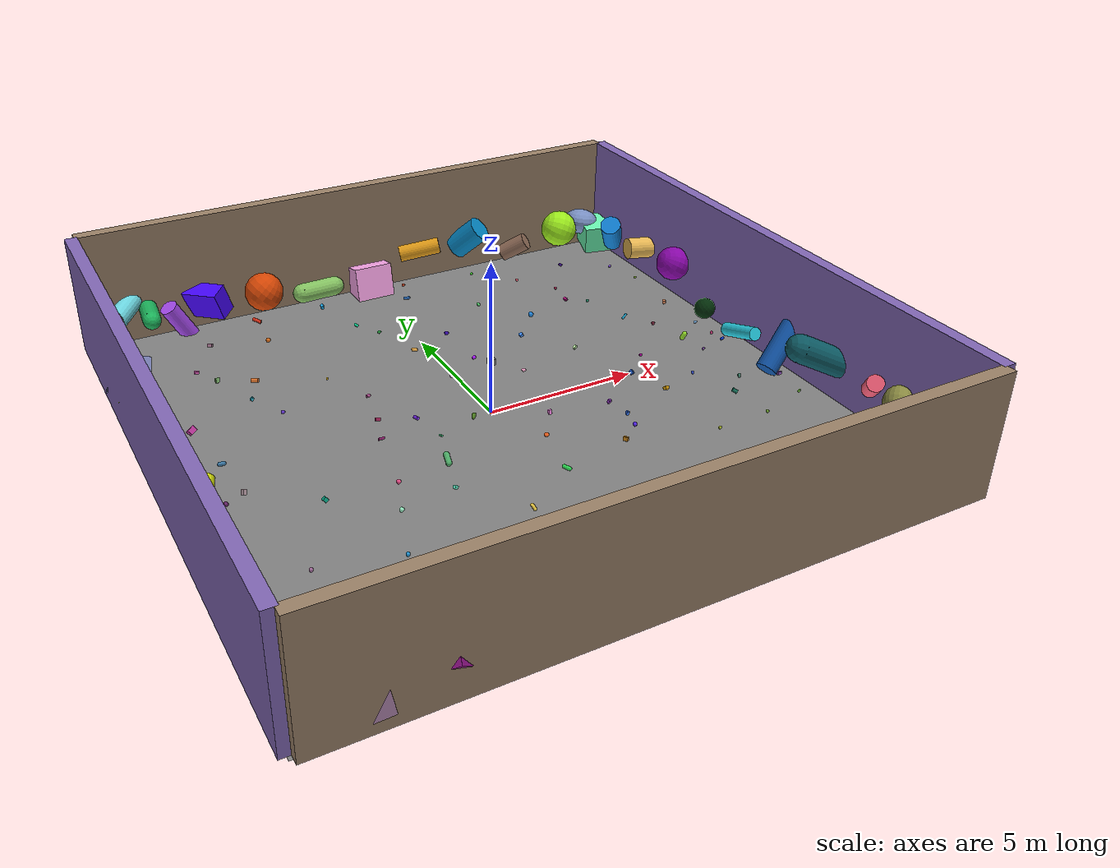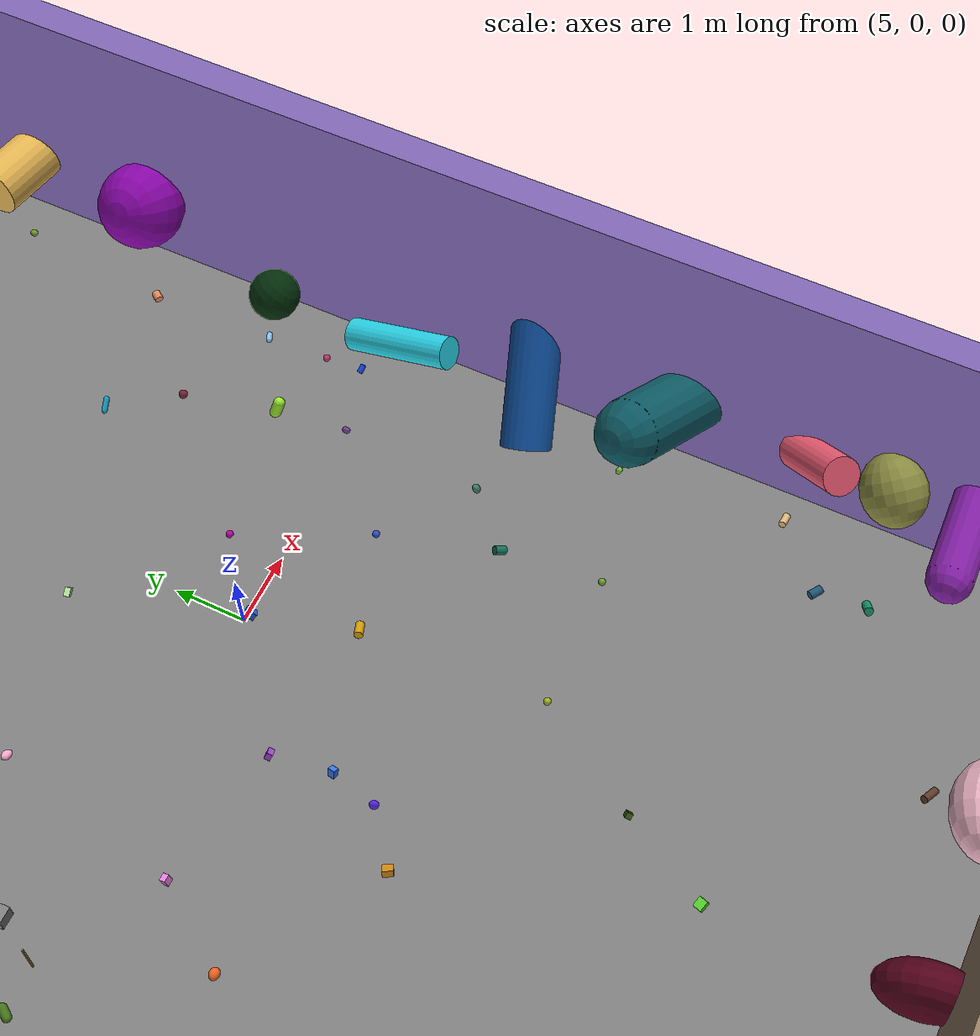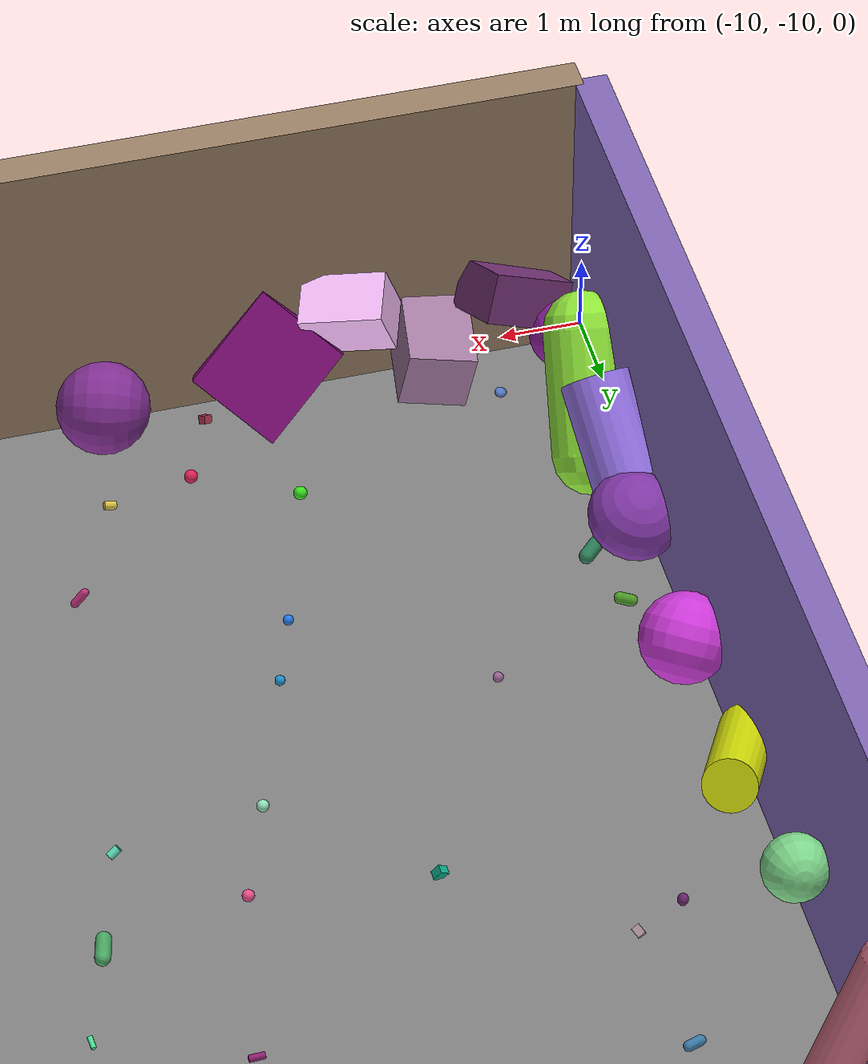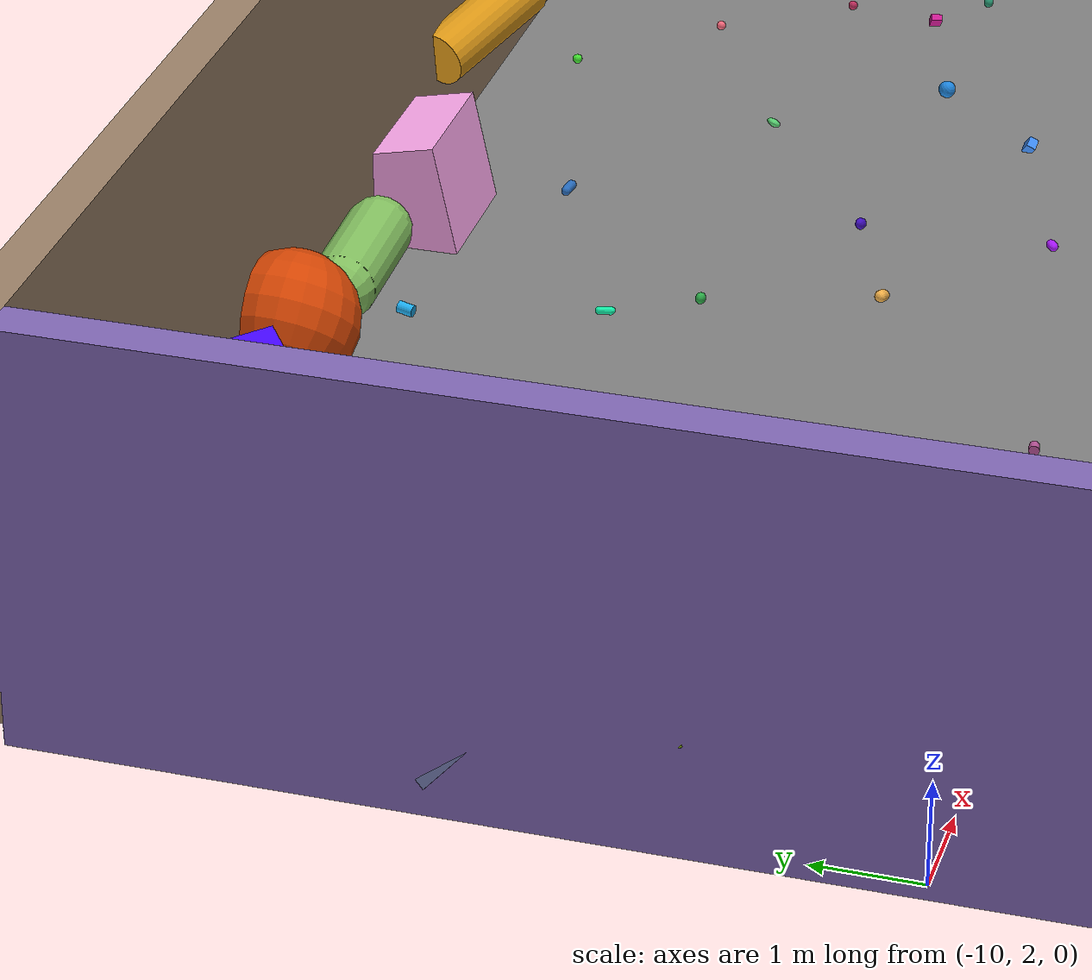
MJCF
<mujoco model="indoor">
    <compiler angle="radian" coordinate="local" inertiafromgeom="true"/>
    <option timestep="0.1" iterations="4" />

    <default>
        <joint armature="0" damping="1"/>
         <geom contype="0" conaffinity="0" condim="3" density="5.0" friction="1 0.5 0.5"/>

         <default class="borderpost">
            <geom type="box" size="9.9 0.2 2" material="matmarble"/>
        </default>
        <default class="roof">
            <geom type="box" size="10 10 0.2" rgba=".3 .55 .55 0.4"/>
        </default>
        <default class="object1">
            <geom type="capsule" material="object1" size="0.5 0.2"/>
        </default>
        <default class="object2">
            <geom type="ellipsoid" material="object2" size="0.5 0.3 0.7"/>
        </default>
        <default class="object3">
            <geom type="box" material="object3" size="0.2 0.2 0.2"/>
        </default>

        <default class="object4">
            <geom type="cylinder" material="object4" size="0.5 0.5" condim="4" friction="1 .01 .01"/>
        </default>

        <default class="object5">
            <geom type="sphere" material="object5" size="0.5"/>
        </default>

        <default class="object6">
            <geom type="capsule" material="object1" size="0.05 0.02"/>
        </default>
        <default class="object7">
            <geom type="ellipsoid" material="object2" size="0.05 0.03 0.07"/>
        </default>
        <default class="object8">
            <geom type="box" material="object3" size="0.05 0.03 0.05"/>
        </default>

        <default class="object9">
            <geom type="cylinder" material="object4" size="0.07 0.05" condim="4" friction="1 .01 .01"/>
        </default>

        <default class="object10">
            <geom type="sphere" material="object5" size="0.05"/>
        </default>

    </default>

    <asset>
        <texture name="texgeom" type="cube" builtin="flat" mark="cross" width="128" height="128"
            rgb1="0.6 0.6 0.6" rgb2="0.6 0.6 0.6" markrgb="1 1 1"/>
        <texture name="texmarble" type="cube" file="marble.png"/>
        <material name="matmarble" texture="texmarble" rgba=".7 .7 .7 1"/>
        <texture builtin="gradient" height="100" rgb1="1 1 1" rgb2="0 0 0" type="skybox" width="100"/>
        <texture builtin="flat" height="1278" mark="cross" markrgb="1 1 1" name="texgeom1" random="0.01" rgb1="0.8 0.6 0.4" rgb2="0.8 0.6 0.4" type="cube" width="127"/>
        <texture builtin="checker" height="100" name="texplane" rgb1="0.6 0.6 0.6" rgb2="0.4 0.4 0.4" type="2d" width="100"/>
        <material name="MatPlane" reflectance="0" shininess="0.2" specular="0.5" texrepeat="40 40" texture="texplane"/>
        <material name="geom" texture="texgeom" texuniform="true"/>
        <material name='object1' texture="texgeom" texuniform="true" rgba=".4 .9 .6 1" />
        <material name='object2' texture="texgeom" texuniform="true" rgba=".4 .6 .9 1" />
        <material name='object3' texture="texgeom" texuniform="true" rgba=".4 .9 .9 1" />
        <material name='object4' texture="texgeom" texuniform="true" rgba=".8 .6 .8 1" />
        <material name='object5' texture="texgeom" texuniform="true" rgba=".9 .1 .1 1" />

      </asset>

    <worldbody>

        <!--geom class="roof" pos="0 0 4" euler="0 0 0"/-->
        <geom class="borderpost" pos="0 10 2" euler="0 0 0" rgba=".6 .5 .4 1"/>
        <geom class="borderpost" pos="0 -10 2" euler="0 0 0" rgba=".6 .5 .4 1"/>
        <geom class="borderpost" pos="10 0 2" euler="0 0 1.5708" rgba=".5 .4 .7 1"/>
        <geom class="borderpost" pos="-10 0 2" euler="0 0 1.5708" rgba=".5 .4 .7 1"/>

        <light cutoff="80" diffuse="1 1 1" dir="-0 0 -1.3" directional="true" exponent="5" pos="0 1 1.3" specular=".1 .1 .1"/>
        <light pos="5 0 5" diffuse="1 1 1" specular="1 1 1" intensity="50"/>
        <geom conaffinity="1" condim="3" material="MatPlane" name="floor" pos="0 0 0" size="10 10 10" type="plane" rgba="0.5 0.5 0.5 1.0"/>
        <body name="fake_go2" pos="0 0 0.3" mocap="true">
            <geom name="fake_go2_geom" pos="0 0 0" size="0.01 0.01 0.3" type="box" rgba=".8 .7 .3 1"/>
            <body>
                <joint/>
                <camera name="came" mode="fixed" resolution="256 256" euler="2.1 -1.3 0.5" orthographic="false" fovy="30"/>
                <geom name="body_came" pos="0 0 1.5" size="0.1 0.1 0.1" type="box"/>
            </body>
        </body>

<geom type="capsule" size="0.30 0.85" pos="-8 9.5 1.08" rgba="0.11 0.71 0.36 1" euler="1.50 3.03 0.23"/>
<geom type="box" size="0.67 0.32 0.51" pos="-6 9.5 1.02" rgba="0.27 0.02 0.98 1" euler="0.13 2.85 0.84"/>
<geom type="sphere" size="0.67" pos="-4 9.5 0.90" rgba="0.85 0.28 0.02 1" euler="0.04 0.80 1.96"/>
<geom type="capsule" size="0.34 0.61" pos="-2 9.5 0.53" rgba="0.52 0.76 0.38 1" euler="1.80 1.60 0.04"/>
<geom type="box" size="0.46 0.63 0.69" pos="0 9.5 0.41" rgba="0.98 0.65 0.91 1" euler="0.79 1.58 0.57"/>
<geom type="cylinder" size="0.29 0.74" pos="2 9.5 1.26" rgba="0.87 0.60 0.09 1" euler="1.07 1.17 1.25"/>
<geom type="cylinder" size="0.47 0.64" pos="4 9.5 1.33" rgba="0.02 0.53 0.77 1" euler="0.67 0.56 1.74"/>
<geom type="cylinder" size="0.32 0.53" pos="6 9.5 0.54" rgba="0.56 0.42 0.34 1" euler="0.77 0.76 1.33"/>
<geom type="sphere" size="0.68" pos="8 9.5 0.91" rgba="0.62 0.93 0.11 1" euler="2.34 1.00 1.49"/>
<geom type="capsule" size="0.35 0.82" pos="-9 9.5 1.08" rgba="0.42 0.84 0.88 1" euler="2.09 2.34 0.06"/>
<geom type="ellipsoid" size="0.66 0.66 0.48" pos="9 9.5 1.02" rgba="0.48 0.57 0.77 1" euler="2.95 2.90 0.94"/>
<geom type="cylinder" size="0.30 0.78" pos="-7 9.5 0.42" rgba="0.65 0.29 0.93 1" euler="0.11 2.66 2.92"/>
<geom type="box" size="0.39 0.69 0.41" pos="-8 -9.5 0.67" rgba="0.65 0.49 0.64 1" euler="0.62 1.35 2.43"/>
<geom type="box" size="0.41 0.67 0.60" pos="-6 -9.5 0.73" rgba="0.54 0.06 0.51 1" euler="0.83 0.73 1.34"/>
<geom type="sphere" size="0.56" pos="-4 -9.5 0.51" rgba="0.52 0.19 0.59 1" euler="1.39 1.29 2.50"/>
<geom type="sphere" size="0.31" pos="-2 -9.5 0.40" rgba="0.76 0.22 0.30 1" euler="2.00 3.00 1.06"/>
<geom type="ellipsoid" size="0.55 0.42 0.55" pos="0 -9.5 1.42" rgba="0.67 0.69 0.94 1" euler="1.82 1.83 0.21"/>
<geom type="ellipsoid" size="0.57 0.49 0.64" pos="2 -9.5 1.07" rgba="0.72 0.49 0.29 1" euler="0.14 0.06 0.27"/>
<geom type="ellipsoid" size="0.66 0.54 0.34" pos="4 -9.5 0.51" rgba="0.33 0.01 0.11 1" euler="1.81 1.75 2.96"/>
<geom type="ellipsoid" size="0.59 0.53 0.67" pos="6 -9.5 1.37" rgba="0.98 0.75 0.82 1" euler="0.67 1.76 1.56"/>
<geom type="cylinder" size="0.22 0.69" pos="8 -9.5 0.92" rgba="0.09 0.55 0.13 1" euler="1.78 1.92 2.96"/>
<geom type="box" size="0.41 0.53 0.30" pos="-9 -9.5 1.17" rgba="0.45 0.20 0.46 1" euler="0.50 2.80 1.27"/>
<geom type="sphere" size="0.37" pos="9 -9.5 0.97" rgba="0.37 0.89 0.40 1" euler="2.30 1.61 1.83"/>
<geom type="box" size="0.36 0.32 0.51" pos="-7 -9.5 1.34" rgba="0.98 0.76 1.00 1" euler="2.07 1.11 0.79"/>
<geom type="capsule" size="0.30 0.94" pos="9.5 -8 1.49" rgba="0.52 0.13 0.66 1" euler="1.05 1.62 2.21"/>
<geom type="cylinder" size="0.26 0.61" pos="9.5 -6 1.45" rgba="0.94 0.36 0.46 1" euler="0.77 2.60 1.54"/>
<geom type="capsule" size="0.45 0.98" pos="9.5 -4 1.40" rgba="0.05 0.35 0.39 1" euler="2.55 1.03 1.52"/>
<geom type="cylinder" size="0.35 0.99" pos="9.5 -2 0.93" rgba="0.06 0.32 0.64 1" euler="2.79 2.33 1.42"/>
<geom type="cylinder" size="0.23 0.81" pos="9.5 0 0.44" rgba="0.16 0.83 0.91 1" euler="1.23 3.10 2.53"/>
<geom type="sphere" size="0.36" pos="9.5 2 0.42" rgba="0.01 0.18 0.04 1" euler="0.55 0.59 0.72"/>
<geom type="sphere" size="0.60" pos="9.5 4 1.33" rgba="0.54 0.02 0.67 1" euler="3.02 1.01 0.10"/>
<geom type="cylinder" size="0.38 0.58" pos="9.5 6 1.16" rgba="0.91 0.72 0.33 1" euler="1.97 1.40 2.64"/>
<geom type="cylinder" size="0.38 0.61" pos="9.5 8 0.98" rgba="0.06 0.50 0.83 1" euler="0.51 2.69 2.16"/>
<geom type="sphere" size="0.36" pos="9.5 -9 0.91" rgba="0.65 0.02 0.68 1" euler="1.69 1.53 2.44"/>
<geom type="box" size="0.61 0.51 0.66" pos="9.5 9 0.64" rgba="0.41 0.96 0.69 1" euler="1.42 1.29 0.25"/>
<geom type="ellipsoid" size="0.41 0.44 0.49" pos="9.5 -7 1.47" rgba="0.55 0.55 0.26 1" euler="2.34 2.46 0.35"/>
<geom type="capsule" size="0.47 0.74" pos="-9.5 -8 0.82" rgba="0.58 0.92 0.23 1" euler="0.76 3.04 1.45"/>
<geom type="ellipsoid" size="0.55 0.55 0.45" pos="-9.5 -6 0.73" rgba="0.51 0.22 0.66 1" euler="2.84 0.12 2.26"/>
<geom type="sphere" size="0.53" pos="-9.5 -4 0.74" rgba="0.82 0.23 0.87 1" euler="0.72 2.71 0.34"/>
<geom type="cylinder" size="0.31 0.96" pos="-9.5 -2 0.89" rgba="0.86 0.90 0.04 1" euler="2.12 2.77 1.79"/>
<geom type="sphere" size="0.38" pos="-9.5 0 1.31" rgba="0.50 0.85 0.55 1" euler="1.99 3.12 0.69"/>
<geom type="capsule" size="0.29 0.98" pos="-9.5 2 1.01" rgba="0.88 0.47 0.56 1" euler="0.09 2.78 2.86"/>
<geom type="box" size="0.33 0.60 0.32" pos="-9.5 4 0.84" rgba="0.57 0.75 0.08 1" euler="0.91 2.89 2.38"/>
<geom type="box" size="0.57 0.41 0.61" pos="-9.5 6 0.82" rgba="0.46 0.49 0.69 1" euler="2.48 1.28 1.38"/>
<geom type="sphere" size="0.44" pos="-9.5 8 1.35" rgba="0.05 0.76 0.20 1" euler="1.80 1.00 0.32"/>
<geom type="sphere" size="0.42" pos="-9.5 -9 0.87" rgba="0.56 0.12 0.63 1" euler="2.79 1.36 1.79"/>
<geom type="ellipsoid" size="0.58 0.58 0.57" pos="-9.5 9 1.11" rgba="0.53 0.42 0.46 1" euler="0.00 1.95 1.04"/>
<geom type="cylinder" size="0.42 0.63" pos="-9.5 -7 1.15" rgba="0.59 0.45 0.91 1" euler="0.90 0.10 0.12"/>

<geom type="box"       size="0.07 0.12 0.09" pos="-8.42  3.11 0.09" rgba="0.74 0.21 0.61 1" euler="2.61 0.54 1.32"/>
<geom type="sphere"    size="0.08"         pos="-6.01 -7.95 0.08" rgba="0.22 0.90 0.11 1" euler="0.31 1.17 2.86"/>
<geom type="cylinder"  size="0.06 0.15"    pos="-4.50  8.98 0.12" rgba="0.88 0.20 0.10 1" euler="2.01 0.78 0.44"/>
<geom type="capsule"   size="0.09 0.17"    pos="-2.34 -1.76 0.09" rgba="0.30 0.67 0.40 1" euler="1.83 2.92 0.59"/>
<geom type="ellipsoid" size="0.10 0.06 0.08" pos="-0.12  2.44 0.08" rgba="0.95 0.62 0.87 1" euler="0.72 1.89 0.34"/>
<geom type="box"       size="0.06 0.07 0.05" pos=" 2.79 -3.22 0.05" rgba="0.81 0.53 0.09 1" euler="1.05 2.12 2.01"/>
<geom type="sphere"    size="0.09"         pos=" 4.21  4.99 0.09" rgba="0.12 0.53 0.88 1" euler="0.66 2.87 1.12"/>
<geom type="cylinder"  size="0.05 0.13"    pos=" 6.44 -8.77 0.13" rgba="0.38 0.24 0.17 1" euler="2.44 1.01 0.92"/>
<geom type="capsule"   size="0.08 0.09"    pos=" 8.03  1.18 0.08" rgba="0.63 0.94 0.18 1" euler="0.23 0.41 2.39"/>
<geom type="ellipsoid" size="0.09 0.09 0.05" pos="-9.10  7.65 0.09" rgba="0.40 0.79 0.91 1" euler="1.94 0.29 0.03"/>

<geom type="box"       size="0.05 0.06 0.07" pos=" 9.28 -2.31 0.07" rgba="0.48 0.27 0.63 1" euler="2.06 1.42 0.71"/>
<geom type="sphere"    size="0.06"         pos="-7.49 -4.55 0.06" rgba="0.63 0.41 0.60 1" euler="0.58 2.73 1.53"/>
<geom type="cylinder"  size="0.07 0.12"    pos="-5.85  5.03 0.12" rgba="0.90 0.47 0.18 1" euler="1.41 0.86 2.90"/>
<geom type="capsule"   size="0.05 0.09"    pos="-3.16 -6.92 0.09" rgba="0.77 0.20 0.50 1" euler="0.10 2.41 1.95"/>
<geom type="ellipsoid" size="0.06 0.05 0.06" pos="-1.02  6.31 0.06" rgba="0.18 0.69 0.29 1" euler="2.45 1.18 0.80"/>
<geom type="box"       size="0.07 0.04 0.05" pos=" 1.56 -0.88 0.05" rgba="0.97 0.52 0.91 1" euler="0.39 1.50 2.55"/>
<geom type="sphere"    size="0.05"         pos=" 3.91  9.02 0.05" rgba="0.27 0.92 0.20 1" euler="1.98 0.40 0.12"/>
<geom type="cylinder"  size="0.06 0.10"    pos=" 5.48 -1.43 0.10" rgba="0.85 0.62 0.03 1" euler="0.87 2.04 1.21"/>
<geom type="capsule"   size="0.04 0.08"    pos=" 7.06  3.34 0.08" rgba="0.11 0.65 0.82 1" euler="2.81 2.16 0.52"/>
<geom type="ellipsoid" size="0.05 0.09 0.07" pos="-8.73 -9.01 0.07" rgba="0.33 0.47 0.78 1" euler="1.17 0.77 2.20"/>

<geom type="box"       size="0.08 0.06 0.05" pos="-6.44  8.09 0.05" rgba="0.60 0.42 0.52 1" euler="0.95 2.63 0.30"/>
<geom type="sphere"    size="0.07"         pos="-4.02 -2.11 0.07" rgba="0.93 0.31 0.55 1" euler="2.30 1.98 0.71"/>
<geom type="cylinder"  size="0.05 0.09"    pos="-2.22  0.66 0.09" rgba="0.48 0.16 0.96 1" euler="1.39 0.20 2.61"/>
<geom type="capsule"   size="0.06 0.10"    pos=" 0.45 -3.74 0.10" rgba="0.19 0.90 0.34 1" euler="2.68 0.94 1.04"/>
<geom type="ellipsoid" size="0.08 0.05 0.06" pos=" 2.10  1.72 0.06" rgba="0.99 0.67 0.82 1" euler="1.58 2.99 0.26"/>
<geom type="box"       size="0.04 0.05 0.04" pos=" 4.67 -5.54 0.04" rgba="0.21 0.34 0.09 1" euler="0.26 1.03 1.77"/>
<geom type="sphere"    size="0.05"         pos=" 6.09  6.47 0.05" rgba="0.76 0.18 0.37 1" euler="2.12 1.41 2.51"/>
<geom type="cylinder"  size="0.06 0.11"    pos=" 8.55 -7.21 0.11" rgba="0.10 0.58 0.42 1" euler="0.49 2.34 0.98"/>
<geom type="capsule"   size="0.07 0.08"    pos="-9.47  4.36 0.07" rgba="0.57 0.84 0.23 1" euler="2.22 1.06 2.47"/>
<geom type="ellipsoid" size="0.06 0.07 0.05" pos=" 9.42 -9.11 0.06" rgba="0.16 0.44 0.89 1" euler="0.08 1.69 2.01"/>

<geom type="box"       size="0.05 0.07 0.06" pos="-7.98 -0.57 0.06" rgba="0.68 0.58 0.61 1" euler="1.13 0.44 2.86"/>
<geom type="sphere"    size="0.06"         pos="-5.66  2.89 0.06" rgba="0.43 0.24 0.87 1" euler="0.44 2.09 1.09"/>
<geom type="cylinder"  size="0.05 0.07"    pos="-3.81 -8.32 0.07" rgba="0.86 0.76 0.28 1" euler="2.97 1.78 0.61"/>
<geom type="capsule"   size="0.04 0.06"    pos="-1.53  7.14 0.06" rgba="0.07 0.94 0.66 1" euler="1.62 0.33 2.17"/>
<geom type="ellipsoid" size="0.07 0.06 0.08" pos=" 0.81 -1.98 0.08" rgba="0.95 0.39 0.12 1" euler="0.36 1.50 1.95"/>
<geom type="box"       size="0.06 0.08 0.05" pos=" 3.20  3.88 0.05" rgba="0.25 0.56 0.98 1" euler="2.05 0.12 0.49"/>
<geom type="sphere"    size="0.05"         pos=" 5.62 -4.02 0.05" rgba="0.66 0.72 0.15 1" euler="1.09 2.71 0.88"/>
<geom type="cylinder"  size="0.04 0.06"    pos=" 7.29  8.13 0.06" rgba="0.30 0.09 0.67 1" euler="2.41 0.75 1.31"/>
<geom type="capsule"   size="0.09 0.11"    pos="-9.06 -6.18 0.11" rgba="0.18 0.51 0.36 1" euler="0.99 2.28 0.14"/>
<geom type="ellipsoid" size="0.05 0.05 0.05" pos=" 9.07  0.97 0.05" rgba="0.79 0.22 0.48 1" euler="1.23 2.58 2.84"/>

<geom type="box"       size="0.08 0.05 0.06" pos="-6.89  5.69 0.06" rgba="0.41 0.60 0.35 1" euler="0.51 1.74 2.06"/>
<geom type="sphere"    size="0.07"         pos="-4.47 -3.33 0.07" rgba="0.58 0.90 0.74 1" euler="2.67 1.12 0.19"/>
<geom type="cylinder"  size="0.06 0.08"    pos="-2.08  9.01 0.08" rgba="0.12 0.69 0.95 1" euler="1.70 2.98 0.52"/>
<geom type="capsule"   size="0.05 0.06"    pos=" 0.56 -6.43 0.06" rgba="0.99 0.05 0.67 1" euler="0.17 1.99 2.46"/>
<geom type="ellipsoid" size="0.04 0.08 0.07" pos=" 2.95  6.58 0.07" rgba="0.34 0.81 0.44 1" euler="2.23 0.61 1.10"/>
<geom type="box"       size="0.07 0.05 0.06" pos=" 5.11 -0.04 0.06" rgba="0.14 0.38 0.82 1" euler="0.78 2.29 1.40"/>
<geom type="sphere"    size="0.06"         pos=" 7.68  2.47 0.06" rgba="0.47 0.14 0.23 1" euler="1.46 0.58 2.35"/>
<geom type="cylinder"  size="0.05 0.09"    pos=" 9.33 -5.77 0.09" rgba="0.88 0.73 0.49 1" euler="2.95 1.36 0.42"/>
<geom type="capsule"   size="0.06 0.07"    pos="-8.12  1.05 0.06" rgba="0.24 0.49 0.67 1" euler="0.64 1.83 2.67"/>
<geom type="ellipsoid" size="0.07 0.04 0.06" pos=" 8.88  7.12 0.06" rgba="0.55 0.34 0.95 1" euler="1.08 0.92 0.29"/>

<geom type="box"       size="0.05 0.06 0.05" pos="-5.21 -9.47 0.05" rgba="0.69 0.20 0.31 1" euler="2.14 0.66 1.67"/>
<geom type="sphere"    size="0.04"         pos="-3.74  4.17 0.04" rgba="0.99 0.79 0.09 1" euler="0.35 2.45 0.99"/>
<geom type="cylinder"  size="0.03 0.07"    pos="-1.96 -0.55 0.07" rgba="0.29 0.88 0.56 1" euler="1.27 0.13 2.53"/>
<geom type="capsule"   size="0.05 0.08"    pos=" 0.87  8.22 0.08" rgba="0.16 0.43 0.75 1" euler="2.37 1.49 1.19"/>
<geom type="ellipsoid" size="0.06 0.07 0.04" pos=" 3.46 -2.69 0.06" rgba="0.36 0.15 0.99 1" euler="0.92 2.25 0.03"/>
<geom type="box"       size="0.06 0.04 0.06" pos=" 5.94  5.50 0.06" rgba="0.81 0.10 0.58 1" euler="1.71 0.37 2.02"/>
<geom type="sphere"    size="0.05"         pos=" 7.47 -3.95 0.05" rgba="0.45 0.66 0.20 1" euler="2.58 1.98 1.48"/>
<geom type="cylinder"  size="0.04 0.06"    pos=" 9.11  0.44 0.06" rgba="0.07 0.29 0.97 1" euler="0.25 1.04 2.74"/>
<geom type="capsule"   size="0.07 0.10"    pos="-9.41 -8.03 0.10" rgba="0.59 0.95 0.31 1" euler="1.61 2.40 0.61"/>
<geom type="ellipsoid" size="0.05 0.06 0.08" pos=" 8.03 -1.86 0.08" rgba="0.26 0.52 0.43 1" euler="2.89 0.21 1.02"/>

<geom type="box"       size="0.04 0.05 0.07" pos="-7.34  6.48 0.07" rgba="0.92 0.36 0.76 1" euler="0.46 2.02 0.99"/>
<geom type="sphere"    size="0.06"         pos="-5.09 -5.12 0.06" rgba="0.12 0.57 0.82 1" euler="1.79 2.90 0.40"/>
<geom type="cylinder"  size="0.05 0.08"    pos="-3.27  1.14 0.08" rgba="0.66 0.14 0.36 1" euler="2.04 1.32 2.13"/>
<geom type="capsule"   size="0.08 0.12"    pos="-1.11 -7.81 0.12" rgba="0.39 0.71 0.25 1" euler="0.29 1.65 2.54"/>
<geom type="ellipsoid" size="0.07 0.05 0.06" pos=" 1.22  9.31 0.06" rgba="0.83 0.28 0.14 1" euler="1.02 0.55 2.33"/>
<geom type="box"       size="0.06 0.05 0.04" pos=" 3.63 -2.03 0.04" rgba="0.21 0.47 0.97 1" euler="2.58 1.10 0.45"/>
<geom type="sphere"    size="0.05"         pos=" 6.02  0.79 0.05" rgba="0.74 0.02 0.67 1" euler="0.83 2.64 1.59"/>
<geom type="cylinder"  size="0.06 0.09"    pos=" 8.49 -6.52 0.09" rgba="0.13 0.35 0.48 1" euler="1.48 0.96 2.08"/>
<geom type="capsule"   size="0.05 0.06"    pos="-8.86  2.77 0.06" rgba="0.57 0.23 0.89 1" euler="2.33 2.75 0.18"/>
<geom type="ellipsoid" size="0.04 0.06 0.05" pos=" 9.21  5.88 0.05" rgba="0.44 0.61 0.15 1" euler="0.69 1.48 2.47"/>

<geom type="box"       size="0.07 0.06 0.05" pos="-6.12 -1.92 0.05" rgba="0.03 0.66 0.53 1" euler="1.33 0.09 2.19"/>
<geom type="sphere"    size="0.08"         pos="-4.59  7.49 0.08" rgba="0.88 0.44 0.10 1" euler="2.53 1.57 0.95"/>
<geom type="cylinder"  size="0.05 0.07"    pos="-2.74 -3.08 0.07" rgba="0.37 0.91 0.76 1" euler="0.47 2.23 1.98"/>
<geom type="capsule"   size="0.06 0.05"    pos="-0.47  4.61 0.06" rgba="0.96 0.70 0.29 1" euler="2.88 1.20 0.08"/>
<geom type="ellipsoid" size="0.05 0.08 0.07" pos=" 1.88 -8.44 0.07" rgba="0.55 0.09 0.33 1" euler="1.16 2.01 2.55"/>
<geom type="box"       size="0.04 0.06 0.05" pos=" 4.37  2.26 0.05" rgba="0.79 0.99 0.69 1" euler="0.20 2.67 1.31"/>
<geom type="sphere"    size="0.05"         pos=" 6.85 -0.96 0.05" rgba="0.20 0.31 0.83 1" euler="2.09 0.77 0.34"/>
<geom type="cylinder"  size="0.06 0.06"    pos=" 8.98  3.66 0.06" rgba="0.89 0.55 0.37 1" euler="1.74 2.54 0.66"/>
<geom type="capsule"   size="0.07 0.08"    pos="-9.22 -5.34 0.08" rgba="0.31 0.62 0.16 1" euler="0.12 1.09 2.01"/>
<geom type="ellipsoid" size="0.06 0.05 0.04" pos=" 8.12  0.16 0.06" rgba="0.46 0.28 0.61 1" euler="2.70 1.33 1.70"/>

<geom type="box"       size="0.05 0.05 0.06" pos="-7.03  9.47 0.06" rgba="0.70 0.38 0.09 1" euler="1.18 0.46 2.39"/>
<geom type="sphere"    size="0.06"         pos="-5.40 -6.01 0.06" rgba="0.14 0.49 0.95 1" euler="2.88 1.84 0.27"/>
<geom type="cylinder"  size="0.04 0.09"    pos="-3.60  0.09 0.09" rgba="0.57 0.12 0.44 1" euler="0.34 1.61 2.17"/>
<geom type="capsule"   size="0.05 0.07"    pos="-1.28 -4.88 0.07" rgba="0.93 0.80 0.26 1" euler="2.53 0.36 1.73"/>
<geom type="ellipsoid" size="0.08 0.06 0.05" pos=" 0.99  5.17 0.05" rgba="0.26 0.06 0.77 1" euler="1.48 2.95 0.45"/>
<geom type="box"       size="0.06 0.04 0.05" pos=" 3.50 -1.21 0.05" rgba="0.62 0.24 0.82 1" euler="0.59 1.96 2.89"/>
<geom type="sphere"    size="0.05"         pos=" 5.17  7.74 0.05" rgba="0.99 0.41 0.49 1" euler="0.93 2.22 1.12"/>
<geom type="cylinder"  size="0.06 0.08"    pos=" 7.31 -2.55 0.08" rgba="0.08 0.44 0.35 1" euler="2.16 0.69 2.78"/>
<geom type="capsule"   size="0.04 0.05"    pos=" 9.04  1.87 0.05" rgba="0.53 0.77 0.98 1" euler="1.29 2.02 0.96"/>
<geom type="ellipsoid" size="0.07 0.07 0.06" pos="-8.57 -0.88 0.06" rgba="0.42 0.15 0.43 1" euler="0.03 1.25 2.49"/>

<geom type="box"       size="0.05 0.07 0.04" pos="-6.25  4.11 0.04" rgba="0.16 0.64 0.72 1" euler="2.72 0.82 0.18"/>
<geom type="sphere"    size="0.08"         pos="-4.83 -8.54 0.08" rgba="0.88 0.14 0.33 1" euler="1.05 2.36 1.62"/>
<geom type="cylinder"  size="0.05 0.06"    pos="-2.99  2.57 0.06" rgba="0.73 0.33 0.60 1" euler="0.97 1.78 2.19"/>
<geom type="capsule"   size="0.06 0.06"    pos="-0.61 -0.02 0.06" rgba="0.28 0.47 0.11 1" euler="1.94 2.54 0.39"/>
<geom type="ellipsoid" size="0.05 0.08 0.06" pos=" 1.05  3.21 0.06" rgba="0.66 0.09 0.98 1" euler="2.11 0.48 1.37"/>
<geom type="box"       size="0.06 0.06 0.07" pos=" 4.00 -6.77 0.07" rgba="0.35 0.88 0.19 1" euler="0.71 1.13 2.32"/>
<geom type="sphere"    size="0.05"         pos=" 6.58  5.04 0.05" rgba="0.14 0.56 0.42 1" euler="2.40 0.33 0.89"/>
<geom type="cylinder"  size="0.04 0.05"    pos=" 8.16 -9.22 0.05" rgba="0.84 0.07 0.68 1" euler="1.58 2.90 1.02"/>
<geom type="capsule"   size="0.07 0.09"    pos="-9.09  6.04 0.09" rgba="0.05 0.38 0.95 1" euler="0.44 1.70 2.74"/>
<geom type="ellipsoid" size="0.06 0.05 0.04" pos=" 9.12 -3.47 0.06" rgba="0.48 0.80 0.25 1" euler="2.02 0.05 1.55"/>

        <body name="GodView" pos="0 0 15">
            <camera name="godcame" mode="fixed" resolution="1080 1080" quat="1 0 0 0" fovy="70"/>
        </body>

    </worldbody>

</mujoco>
